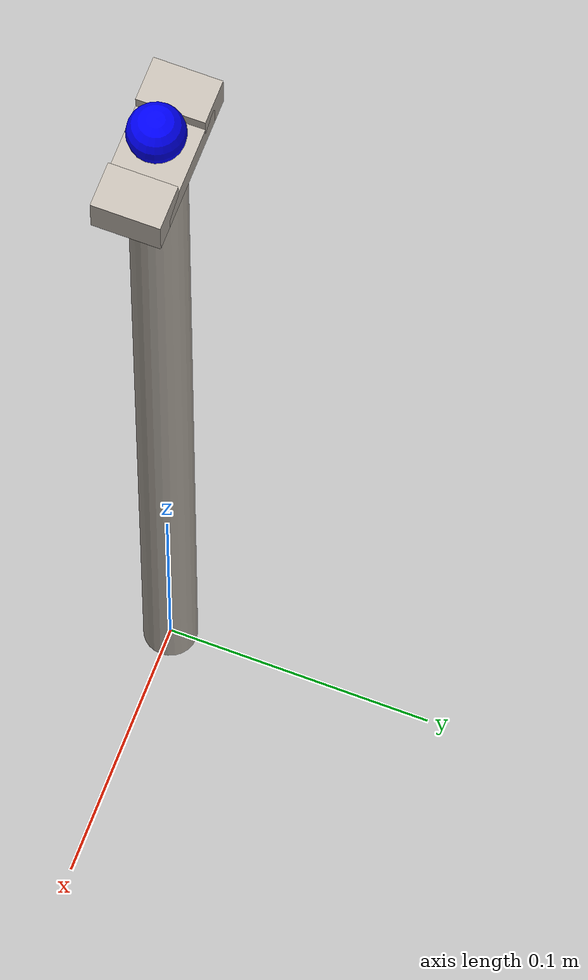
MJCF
<mujoco model="rod">

    <asset>
        <texture file="../../textures/steel-scratched.png" type="cube" name="steel-metal"/>
        <material name="smetal" reflectance="1.0" shininess="1.0" specular="1.0" texrepeat="1 1" texture="steel-metal" texuniform="true"/>
    </asset>

    <actuator>
        <!-- Physical limits of the actuator. -->
        <motor ctrllimited="true" ctrlrange="-80.0 80.0" joint="joint1" name="torq_j1"/>
    </actuator>

    <worldbody>
        <body name="link0" pos="0 0 0">

            <body name="base"/>

            <body name="link1" pos="0 0 0.2">
                <inertial pos="0 0 0" mass="1.0" diaginertia="0.0208895833333 0.0208895833333 0.0001125"/>
                <joint name="joint1" pos="0 0 -0.2" axis="0 1 0" limited="true" range="-2.8973 2.8973" damping="0.1"/>
                <geom type="cylinder" size="0.01 0.2" contype="0" conaffinity="0" group="1" name="link1_visual" material="smetal"/>
                <geom type="cylinder" size="0.01 0.2" group="0" name="link1_collision"/>

                <body name="slot" pos="0 0 0.2">
                    <geom pos="-0.02 0 0.0075" type="box" size="0.008 0.012 0.0075" contype="0" conaffinity="0" group="1" name="slot1_visual" material="smetal"/>
                    <geom pos="-0.02 0 0.0075" type="box" size="0.008 0.012 0.0075" group="0" name="slot1_collision"/>

                    <geom pos="0.02 0 0.0075" type="box" size="0.008 0.012 0.0075" contype="0" conaffinity="0" group="1" name="slot2_visual" material="smetal"/>
                    <geom pos="0.02 0 0.0075" type="box" size="0.008 0.012 0.0075" group="0" name="slot2_collision"/>

                    <geom pos="0 0 0.005" type="box" size="0.02 0.012 0.005" contype="0" conaffinity="0" group="1" name="slot3_visual" material="smetal"/>
                    <geom pos="0 0 0.005" type="box" size="0.02 0.012 0.005" group="0" name="slot3_collision"/>

                    <site name="rodtop" pos="0 0 0.0225"  size="0.01 0.01 0.01" rgba="0 0 1 1" type="sphere" group="1"/>
                </body>
            </body>

        </body>
    </worldbody>
</mujoco>
